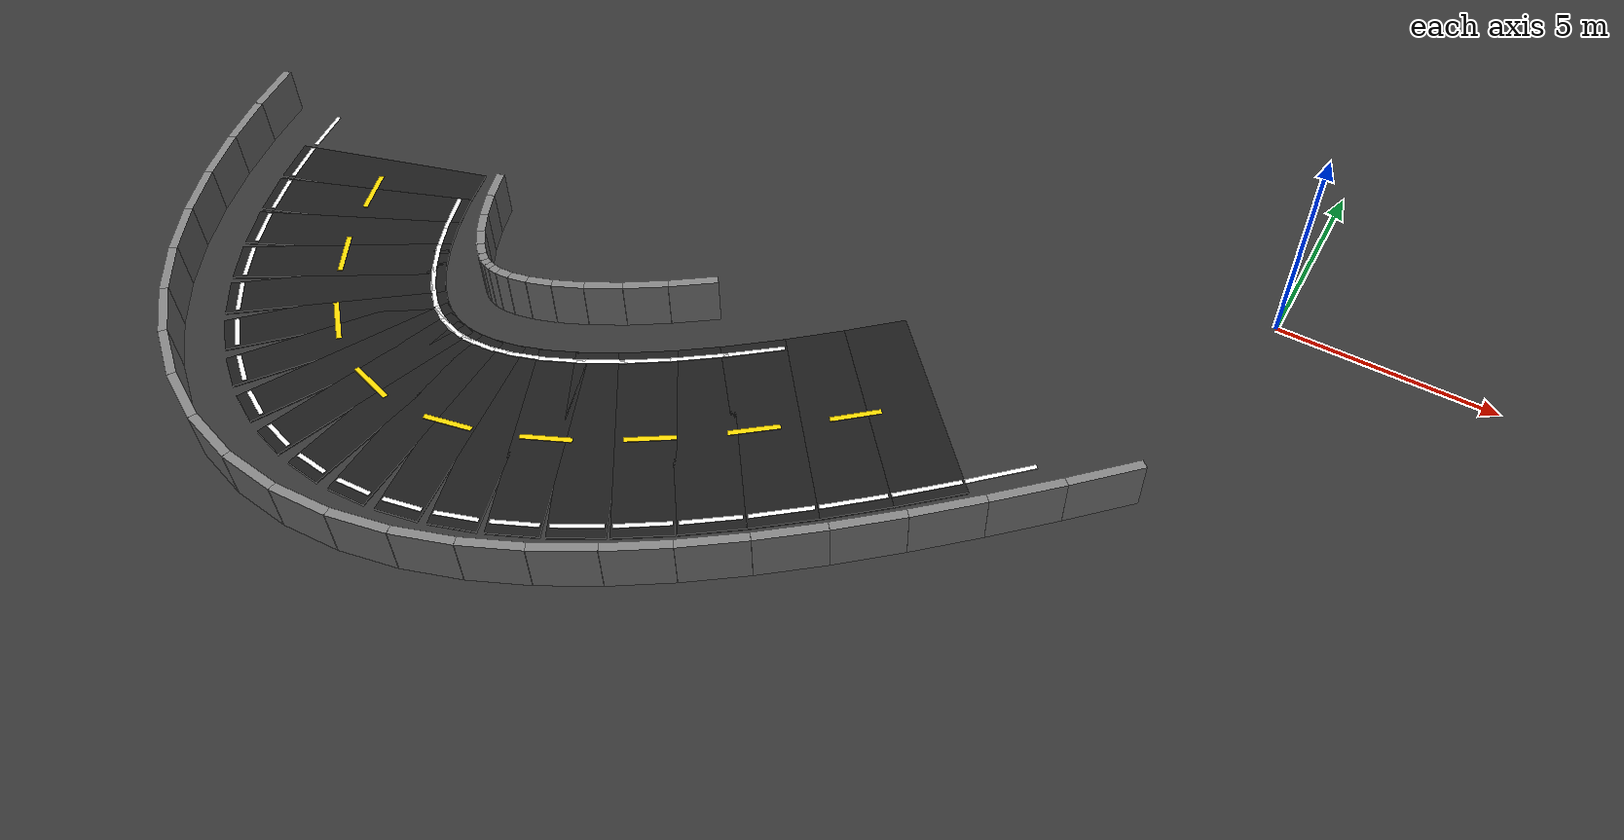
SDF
<sdf version="1.6">
 <world name="adas_figure8_circuit">
  <model name="ground">
   <static>true</static>
   <link name="link">
    <collision name="collision">
     <geometry><plane><normal>0 0 1</normal><size>80.0 80.0</size></plane></geometry>
    </collision>
    <visual name="visual">
     <geometry><plane><normal>0 0 1</normal><size>80.0 80.0</size></plane></geometry>
     <material><ambient>0.16 0.16 0.16 1</ambient><diffuse>0.20 0.20 0.20 1</diffuse></material>
    </visual>
   </link>
  </model>
  <model name="road_095">
   <static>true</static>
   <pose>-21.0868 -6.5267 0.025 0 0 -1.269703</pose>
   <link name="link">
    <collision name="collision"><geometry><box><size>1.2030 5.000 0.05</size></box></geometry></collision>
    <visual name="visual">
     <geometry><box><size>1.2030 5.000 0.05</size></box></geometry>
     <material><ambient>0.07 0.07 0.07 1</ambient><diffuse>0.10 0.10 0.10 1</diffuse></material>
    </visual>
   </link>
  </model>
  <model name="road_096">
   <static>true</static>
   <pose>-20.7310 -7.5415 0.025 0 0 -1.195586</pose>
   <link name="link">
    <collision name="collision"><geometry><box><size>1.1491 5.000 0.05</size></box></geometry></collision>
    <visual name="visual">
     <geometry><box><size>1.1491 5.000 0.05</size></box></geometry>
     <material><ambient>0.07 0.07 0.07 1</ambient><diffuse>0.10 0.10 0.10 1</diffuse></material>
    </visual>
   </link>
  </model>
  <model name="road_097">
   <static>true</static>
   <pose>-20.3184 -8.4737 0.025 0 0 -1.110140</pose>
   <link name="link">
    <collision name="collision"><geometry><box><size>1.0915 5.000 0.05</size></box></geometry></collision>
    <visual name="visual">
     <geometry><box><size>1.0915 5.000 0.05</size></box></geometry>
     <material><ambient>0.07 0.07 0.07 1</ambient><diffuse>0.10 0.10 0.10 1</diffuse></material>
    </visual>
   </link>
  </model>
  <model name="road_098">
   <static>true</static>
   <pose>-19.8501 -9.3130 0.025 0 0 -1.010547</pose>
   <link name="link">
    <collision name="collision"><geometry><box><size>1.0331 5.000 0.05</size></box></geometry></collision>
    <visual name="visual">
     <geometry><box><size>1.0331 5.000 0.05</size></box></geometry>
     <material><ambient>0.07 0.07 0.07 1</ambient><diffuse>0.10 0.10 0.10 1</diffuse></material>
    </visual>
   </link>
  </model>
  <model name="road_099">
   <static>true</static>
   <pose>-19.3274 -10.0503 0.025 0 0 -0.894005</pose>
   <link name="link">
    <collision name="collision"><geometry><box><size>0.9775 5.000 0.05</size></box></geometry></collision>
    <visual name="visual">
     <geometry><box><size>0.9775 5.000 0.05</size></box></geometry>
     <material><ambient>0.07 0.07 0.07 1</ambient><diffuse>0.10 0.10 0.10 1</diffuse></material>
    </visual>
   </link>
  </model>
  <model name="road_100">
   <static>true</static>
   <pose>-18.7517 -10.6774 0.025 0 0 -0.758473</pose>
   <link name="link">
    <collision name="collision"><geometry><box><size>0.9291 5.000 0.05</size></box></geometry></collision>
    <visual name="visual">
     <geometry><box><size>0.9291 5.000 0.05</size></box></geometry>
     <material><ambient>0.07 0.07 0.07 1</ambient><diffuse>0.10 0.10 0.10 1</diffuse></material>
    </visual>
   </link>
  </model>
  <model name="road_101">
   <static>true</static>
   <pose>-18.1246 -11.1876 0.025 0 0 -0.603974</pose>
   <link name="link">
    <collision name="collision"><geometry><box><size>0.8926 5.000 0.05</size></box></geometry></collision>
    <visual name="visual">
     <geometry><box><size>0.8926 5.000 0.05</size></box></geometry>
     <material><ambient>0.07 0.07 0.07 1</ambient><diffuse>0.10 0.10 0.10 1</diffuse></material>
    </visual>
   </link>
  </model>
  <model name="road_102">
   <static>true</static>
   <pose>-17.4478 -11.5752 0.025 0 0 -0.434146</pose>
   <link name="link">
    <collision name="collision"><geometry><box><size>0.8729 5.000 0.05</size></box></geometry></collision>
    <visual name="visual">
     <geometry><box><size>0.8729 5.000 0.05</size></box></geometry>
     <material><ambient>0.07 0.07 0.07 1</ambient><diffuse>0.10 0.10 0.10 1</diffuse></material>
    </visual>
   </link>
  </model>
  <model name="road_103">
   <static>true</static>
   <pose>-16.7232 -11.8360 0.025 0 0 -0.256877</pose>
   <link name="link">
    <collision name="collision"><geometry><box><size>0.8734 5.000 0.05</size></box></geometry></collision>
    <visual name="visual">
     <geometry><box><size>0.8734 5.000 0.05</size></box></geometry>
     <material><ambient>0.07 0.07 0.07 1</ambient><diffuse>0.10 0.10 0.10 1</diffuse></material>
    </visual>
   </link>
  </model>
  <model name="road_104">
   <static>true</static>
   <pose>-15.9528 -11.9671 0.025 0 0 -0.082725</pose>
   <link name="link">
    <collision name="collision"><geometry><box><size>0.8956 5.000 0.05</size></box></geometry></collision>
    <visual name="visual">
     <geometry><box><size>0.8956 5.000 0.05</size></box></geometry>
     <material><ambient>0.07 0.07 0.07 1</ambient><diffuse>0.10 0.10 0.10 1</diffuse></material>
    </visual>
   </link>
  </model>
  <model name="road_105">
   <static>true</static>
   <pose>-15.1386 -11.9671 0.025 0 0 0.078521</pose>
   <link name="link">
    <collision name="collision"><geometry><box><size>0.9381 5.000 0.05</size></box></geometry></collision>
    <visual name="visual">
     <geometry><box><size>0.9381 5.000 0.05</size></box></geometry>
     <material><ambient>0.07 0.07 0.07 1</ambient><diffuse>0.10 0.10 0.10 1</diffuse></material>
    </visual>
   </link>
  </model>
  <model name="road_106">
   <static>true</static>
   <pose>-14.2830 -11.8360 0.025 0 0 0.220696</pose>
   <link name="link">
    <collision name="collision"><geometry><box><size>0.9976 5.000 0.05</size></box></geometry></collision>
    <visual name="visual">
     <geometry><box><size>0.9976 5.000 0.05</size></box></geometry>
     <material><ambient>0.07 0.07 0.07 1</ambient><diffuse>0.10 0.10 0.10 1</diffuse></material>
    </visual>
   </link>
  </model>
  <model name="road_107">
   <static>true</static>
   <pose>-13.3882 -11.5752 0.025 0 0 0.341806</pose>
   <link name="link">
    <collision name="collision"><geometry><box><size>1.0699 5.000 0.05</size></box></geometry></collision>
    <visual name="visual">
     <geometry><box><size>1.0699 5.000 0.05</size></box></geometry>
     <material><ambient>0.07 0.07 0.07 1</ambient><diffuse>0.10 0.10 0.10 1</diffuse></material>
    </visual>
   </link>
  </model>
  <model name="road_108">
   <static>true</static>
   <pose>-12.4567 -11.1876 0.025 0 0 0.442808</pose>
   <link name="link">
    <collision name="collision"><geometry><box><size>1.1505 5.000 0.05</size></box></geometry></collision>
    <visual name="visual">
     <geometry><box><size>1.1505 5.000 0.05</size></box></geometry>
     <material><ambient>0.07 0.07 0.07 1</ambient><diffuse>0.10 0.10 0.10 1</diffuse></material>
    </visual>
   </link>
  </model>
  <model name="road_109">
   <static>true</static>
   <pose>-11.4910 -10.6774 0.025 0 0 0.526076</pose>
   <link name="link">
    <collision name="collision"><geometry><box><size>1.2356 5.000 0.05</size></box></geometry></collision>
    <visual name="visual">
     <geometry><box><size>1.2356 5.000 0.05</size></box></geometry>
     <material><ambient>0.07 0.07 0.07 1</ambient><diffuse>0.10 0.10 0.10 1</diffuse></material>
    </visual>
   </link>
  </model>
  <model name="road_110">
   <static>true</static>
   <pose>-10.4939 -10.0503 0.025 0 0 0.594333</pose>
   <link name="link">
    <collision name="collision"><geometry><box><size>1.3217 5.000 0.05</size></box></geometry></collision>
    <visual name="visual">
     <geometry><box><size>1.3217 5.000 0.05</size></box></geometry>
     <material><ambient>0.07 0.07 0.07 1</ambient><diffuse>0.10 0.10 0.10 1</diffuse></material>
    </visual>
   </link>
  </model>
  <model name="road_111">
   <static>true</static>
   <pose>-9.4680 -9.3130 0.025 0 0 0.650103</pose>
   <link name="link">
    <collision name="collision"><geometry><box><size>1.4060 5.000 0.05</size></box></geometry></collision>
    <visual name="visual">
     <geometry><box><size>1.4060 5.000 0.05</size></box></geometry>
     <material><ambient>0.07 0.07 0.07 1</ambient><diffuse>0.10 0.10 0.10 1</diffuse></material>
    </visual>
   </link>
  </model>
  <model name="road_112">
   <static>true</static>
   <pose>-8.4162 -8.4737 0.025 0 0 0.695520</pose>
   <link name="link">
    <collision name="collision"><geometry><box><size>1.4861 5.000 0.05</size></box></geometry></collision>
    <visual name="visual">
     <geometry><box><size>1.4861 5.000 0.05</size></box></geometry>
     <material><ambient>0.07 0.07 0.07 1</ambient><diffuse>0.10 0.10 0.10 1</diffuse></material>
    </visual>
   </link>
  </model>
  <model name="road_113">
   <static>true</static>
   <pose>-7.3412 -7.5415 0.025 0 0 0.732304</pose>
   <link name="link">
    <collision name="collision"><geometry><box><size>1.5600 5.000 0.05</size></box></geometry></collision>
    <visual name="visual">
     <geometry><box><size>1.5600 5.000 0.05</size></box></geometry>
     <material><ambient>0.07 0.07 0.07 1</ambient><diffuse>0.10 0.10 0.10 1</diffuse></material>
    </visual>
   </link>
  </model>
  <model name="road_114">
   <static>true</static>
   <pose>-6.2462 -6.5267 0.025 0 0 0.761799</pose>
   <link name="link">
    <collision name="collision"><geometry><box><size>1.6262 5.000 0.05</size></box></geometry></collision>
    <visual name="visual">
     <geometry><box><size>1.6262 5.000 0.05</size></box></geometry>
     <material><ambient>0.07 0.07 0.07 1</ambient><diffuse>0.10 0.10 0.10 1</diffuse></material>
    </visual>
   </link>
  </model>
  <model name="center_dash_050">
   <static>true</static>
   <pose>-20.8994 -7.1141 0.058 0 0 -1.195586</pose>
   <link name="link">
    <visual name="visual">
     <geometry><box><size>1.150 0.12 0.02</size></box></geometry>
     <material><ambient>1 0.82 0 1</ambient><diffuse>1 0.82 0 1</diffuse></material>
    </visual>
   </link>
  </model>
  <model name="center_dash_051">
   <static>true</static>
   <pose>-19.9653 -9.1292 0.058 0 0 -1.010547</pose>
   <link name="link">
    <visual name="visual">
     <geometry><box><size>1.150 0.12 0.02</size></box></geometry>
     <material><ambient>1 0.82 0 1</ambient><diffuse>1 0.82 0 1</diffuse></material>
    </visual>
   </link>
  </model>
  <model name="center_dash_052">
   <static>true</static>
   <pose>-18.5705 -10.8491 0.058 0 0 -0.758473</pose>
   <link name="link">
    <visual name="visual">
     <geometry><box><size>1.150 0.12 0.02</size></box></geometry>
     <material><ambient>1 0.82 0 1</ambient><diffuse>1 0.82 0 1</diffuse></material>
    </visual>
   </link>
  </model>
  <model name="center_dash_053">
   <static>true</static>
   <pose>-16.6187 -11.8635 0.058 0 0 -0.256877</pose>
   <link name="link">
    <visual name="visual">
     <geometry><box><size>1.150 0.12 0.02</size></box></geometry>
     <material><ambient>1 0.82 0 1</ambient><diffuse>1 0.82 0 1</diffuse></material>
    </visual>
   </link>
  </model>
  <model name="center_dash_054">
   <static>true</static>
   <pose>-14.4156 -11.8658 0.058 0 0 0.220696</pose>
   <link name="link">
    <visual name="visual">
     <geometry><box><size>1.150 0.12 0.02</size></box></geometry>
     <material><ambient>1 0.82 0 1</ambient><diffuse>1 0.82 0 1</diffuse></material>
    </visual>
   </link>
  </model>
  <model name="center_dash_055">
   <static>true</static>
   <pose>-12.3255 -11.1254 0.058 0 0 0.442808</pose>
   <link name="link">
    <visual name="visual">
     <geometry><box><size>1.150 0.12 0.02</size></box></geometry>
     <material><ambient>1 0.82 0 1</ambient><diffuse>1 0.82 0 1</diffuse></material>
    </visual>
   </link>
  </model>
  <model name="center_dash_056">
   <static>true</static>
   <pose>-10.4122 -9.9951 0.058 0 0 0.594333</pose>
   <link name="link">
    <visual name="visual">
     <geometry><box><size>1.150 0.12 0.02</size></box></geometry>
     <material><ambient>1 0.82 0 1</ambient><diffuse>1 0.82 0 1</diffuse></material>
    </visual>
   </link>
  </model>
  <model name="center_dash_057">
   <static>true</static>
   <pose>-8.6358 -8.6570 0.058 0 0 0.695520</pose>
   <link name="link">
    <visual name="visual">
     <geometry><box><size>1.150 0.12 0.02</size></box></geometry>
     <material><ambient>1 0.82 0 1</ambient><diffuse>1 0.82 0 1</diffuse></material>
    </visual>
   </link>
  </model>
  <model name="center_dash_058">
   <static>true</static>
   <pose>-6.9576 -7.1966 0.058 0 0 0.732304</pose>
   <link name="link">
    <visual name="visual">
     <geometry><box><size>1.150 0.12 0.02</size></box></geometry>
     <material><ambient>1 0.82 0 1</ambient><diffuse>1 0.82 0 1</diffuse></material>
    </visual>
   </link>
  </model>
  <model name="edge_left_096">
   <static>true</static>
   <pose>-18.6655 -6.7279 0.058 0 0 -1.195586</pose>
   <link name="link">
    <visual name="visual">
     <geometry><box><size>1.0491 0.10 0.02</size></box></geometry>
     <material><ambient>0.95 0.95 0.95 1</ambient><diffuse>0.95 0.95 0.95 1</diffuse></material>
    </visual>
   </link>
  </model>
  <model name="edge_left_097">
   <static>true</static>
   <pose>-18.3298 -7.4868 0.058 0 0 -1.110140</pose>
   <link name="link">
    <visual name="visual">
     <geometry><box><size>0.9915 0.10 0.02</size></box></geometry>
     <material><ambient>0.95 0.95 0.95 1</ambient><diffuse>0.95 0.95 0.95 1</diffuse></material>
    </visual>
   </link>
  </model>
  <model name="edge_left_098">
   <static>true</static>
   <pose>-17.9695 -8.1333 0.058 0 0 -1.010547</pose>
   <link name="link">
    <visual name="visual">
     <geometry><box><size>0.9331 0.10 0.02</size></box></geometry>
     <material><ambient>0.95 0.95 0.95 1</ambient><diffuse>0.95 0.95 0.95 1</diffuse></material>
    </visual>
   </link>
  </model>
  <model name="edge_left_099">
   <static>true</static>
   <pose>-17.5967 -8.6599 0.058 0 0 -0.894005</pose>
   <link name="link">
    <visual name="visual">
     <geometry><box><size>0.8775 0.10 0.02</size></box></geometry>
     <material><ambient>0.95 0.95 0.95 1</ambient><diffuse>0.95 0.95 0.95 1</diffuse></material>
    </visual>
   </link>
  </model>
  <model name="edge_left_100">
   <static>true</static>
   <pose>-17.2247 -9.0660 0.058 0 0 -0.758473</pose>
   <link name="link">
    <visual name="visual">
     <geometry><box><size>0.8291 0.10 0.02</size></box></geometry>
     <material><ambient>0.95 0.95 0.95 1</ambient><diffuse>0.95 0.95 0.95 1</diffuse></material>
    </visual>
   </link>
  </model>
  <model name="edge_left_101">
   <static>true</static>
   <pose>-16.8638 -9.3604 0.058 0 0 -0.603974</pose>
   <link name="link">
    <visual name="visual">
     <geometry><box><size>0.7926 0.10 0.02</size></box></geometry>
     <material><ambient>0.95 0.95 0.95 1</ambient><diffuse>0.95 0.95 0.95 1</diffuse></material>
    </visual>
   </link>
  </model>
  <model name="edge_left_102">
   <static>true</static>
   <pose>-16.5140 -9.5612 0.058 0 0 -0.434146</pose>
   <link name="link">
    <visual name="visual">
     <geometry><box><size>0.7729 0.10 0.02</size></box></geometry>
     <material><ambient>0.95 0.95 0.95 1</ambient><diffuse>0.95 0.95 0.95 1</diffuse></material>
    </visual>
   </link>
  </model>
  <model name="edge_left_103">
   <static>true</static>
   <pose>-16.1592 -9.6889 0.058 0 0 -0.256877</pose>
   <link name="link">
    <visual name="visual">
     <geometry><box><size>0.7734 0.10 0.02</size></box></geometry>
     <material><ambient>0.95 0.95 0.95 1</ambient><diffuse>0.95 0.95 0.95 1</diffuse></material>
    </visual>
   </link>
  </model>
  <model name="edge_left_104">
   <static>true</static>
   <pose>-15.7693 -9.7547 0.058 0 0 -0.082725</pose>
   <link name="link">
    <visual name="visual">
     <geometry><box><size>0.7956 0.10 0.02</size></box></geometry>
     <material><ambient>0.95 0.95 0.95 1</ambient><diffuse>0.95 0.95 0.95 1</diffuse></material>
    </visual>
   </link>
  </model>
  <model name="edge_left_105">
   <static>true</static>
   <pose>-15.3127 -9.7540 0.058 0 0 0.078521</pose>
   <link name="link">
    <visual name="visual">
     <geometry><box><size>0.8381 0.10 0.02</size></box></geometry>
     <material><ambient>0.95 0.95 0.95 1</ambient><diffuse>0.95 0.95 0.95 1</diffuse></material>
    </visual>
   </link>
  </model>
  <model name="edge_left_106">
   <static>true</static>
   <pose>-14.7689 -9.6699 0.058 0 0 0.220696</pose>
   <link name="link">
    <visual name="visual">
     <geometry><box><size>0.8976 0.10 0.02</size></box></geometry>
     <material><ambient>0.95 0.95 0.95 1</ambient><diffuse>0.95 0.95 0.95 1</diffuse></material>
    </visual>
   </link>
  </model>
  <model name="edge_left_107">
   <static>true</static>
   <pose>-14.1323 -9.4836 0.058 0 0 0.341806</pose>
   <link name="link">
    <visual name="visual">
     <geometry><box><size>0.9699 0.10 0.02</size></box></geometry>
     <material><ambient>0.95 0.95 0.95 1</ambient><diffuse>0.95 0.95 0.95 1</diffuse></material>
    </visual>
   </link>
  </model>
  <model name="edge_left_108">
   <static>true</static>
   <pose>-13.4079 -9.1817 0.058 0 0 0.442808</pose>
   <link name="link">
    <visual name="visual">
     <geometry><box><size>1.0505 0.10 0.02</size></box></geometry>
     <material><ambient>0.95 0.95 0.95 1</ambient><diffuse>0.95 0.95 0.95 1</diffuse></material>
    </visual>
   </link>
  </model>
  <model name="edge_left_109">
   <static>true</static>
   <pose>-12.6058 -8.7576 0.058 0 0 0.526076</pose>
   <link name="link">
    <visual name="visual">
     <geometry><box><size>1.1356 0.10 0.02</size></box></geometry>
     <material><ambient>0.95 0.95 0.95 1</ambient><diffuse>0.95 0.95 0.95 1</diffuse></material>
    </visual>
   </link>
  </model>
  <model name="edge_left_110">
   <static>true</static>
   <pose>-11.7370 -8.2109 0.058 0 0 0.594333</pose>
   <link name="link">
    <visual name="visual">
     <geometry><box><size>1.2217 0.10 0.02</size></box></geometry>
     <material><ambient>0.95 0.95 0.95 1</ambient><diffuse>0.95 0.95 0.95 1</diffuse></material>
    </visual>
   </link>
  </model>
  <model name="edge_left_111">
   <static>true</static>
   <pose>-10.8117 -7.5458 0.058 0 0 0.650103</pose>
   <link name="link">
    <visual name="visual">
     <geometry><box><size>1.3060 0.10 0.02</size></box></geometry>
     <material><ambient>0.95 0.95 0.95 1</ambient><diffuse>0.95 0.95 0.95 1</diffuse></material>
    </visual>
   </link>
  </model>
  <model name="edge_left_112">
   <static>true</static>
   <pose>-9.8387 -6.7693 0.058 0 0 0.695520</pose>
   <link name="link">
    <visual name="visual">
     <geometry><box><size>1.3861 0.10 0.02</size></box></geometry>
     <material><ambient>0.95 0.95 0.95 1</ambient><diffuse>0.95 0.95 0.95 1</diffuse></material>
    </visual>
   </link>
  </model>
  <model name="edge_right_094">
   <static>true</static>
   <pose>-23.5434 -5.9590 0.058 0 0 -1.335014</pose>
   <link name="link">
    <visual name="visual">
     <geometry><box><size>1.1510 0.10 0.02</size></box></geometry>
     <material><ambient>0.95 0.95 0.95 1</ambient><diffuse>0.95 0.95 0.95 1</diffuse></material>
    </visual>
   </link>
  </model>
  <model name="edge_right_095">
   <static>true</static>
   <pose>-23.2069 -7.1851 0.058 0 0 -1.269703</pose>
   <link name="link">
    <visual name="visual">
     <geometry><box><size>1.1030 0.10 0.02</size></box></geometry>
     <material><ambient>0.95 0.95 0.95 1</ambient><diffuse>0.95 0.95 0.95 1</diffuse></material>
    </visual>
   </link>
  </model>
  <model name="edge_right_096">
   <static>true</static>
   <pose>-22.7966 -8.3551 0.058 0 0 -1.195586</pose>
   <link name="link">
    <visual name="visual">
     <geometry><box><size>1.0491 0.10 0.02</size></box></geometry>
     <material><ambient>0.95 0.95 0.95 1</ambient><diffuse>0.95 0.95 0.95 1</diffuse></material>
    </visual>
   </link>
  </model>
  <model name="edge_right_097">
   <static>true</static>
   <pose>-22.3070 -9.4605 0.058 0 0 -1.110140</pose>
   <link name="link">
    <visual name="visual">
     <geometry><box><size>0.9915 0.10 0.02</size></box></geometry>
     <material><ambient>0.95 0.95 0.95 1</ambient><diffuse>0.95 0.95 0.95 1</diffuse></material>
    </visual>
   </link>
  </model>
  <model name="edge_right_098">
   <static>true</static>
   <pose>-21.7307 -10.4927 0.058 0 0 -1.010547</pose>
   <link name="link">
    <visual name="visual">
     <geometry><box><size>0.9331 0.10 0.02</size></box></geometry>
     <material><ambient>0.95 0.95 0.95 1</ambient><diffuse>0.95 0.95 0.95 1</diffuse></material>
    </visual>
   </link>
  </model>
  <model name="edge_right_099">
   <static>true</static>
   <pose>-21.0580 -11.4406 0.058 0 0 -0.894005</pose>
   <link name="link">
    <visual name="visual">
     <geometry><box><size>0.8775 0.10 0.02</size></box></geometry>
     <material><ambient>0.95 0.95 0.95 1</ambient><diffuse>0.95 0.95 0.95 1</diffuse></material>
    </visual>
   </link>
  </model>
  <model name="edge_right_100">
   <static>true</static>
   <pose>-20.2786 -12.2889 0.058 0 0 -0.758473</pose>
   <link name="link">
    <visual name="visual">
     <geometry><box><size>0.8291 0.10 0.02</size></box></geometry>
     <material><ambient>0.95 0.95 0.95 1</ambient><diffuse>0.95 0.95 0.95 1</diffuse></material>
    </visual>
   </link>
  </model>
  <model name="edge_right_101">
   <static>true</static>
   <pose>-19.3853 -13.0149 0.058 0 0 -0.603974</pose>
   <link name="link">
    <visual name="visual">
     <geometry><box><size>0.7926 0.10 0.02</size></box></geometry>
     <material><ambient>0.95 0.95 0.95 1</ambient><diffuse>0.95 0.95 0.95 1</diffuse></material>
    </visual>
   </link>
  </model>
  <model name="edge_right_102">
   <static>true</static>
   <pose>-18.3816 -13.5893 0.058 0 0 -0.434146</pose>
   <link name="link">
    <visual name="visual">
     <geometry><box><size>0.7729 0.10 0.02</size></box></geometry>
     <material><ambient>0.95 0.95 0.95 1</ambient><diffuse>0.95 0.95 0.95 1</diffuse></material>
    </visual>
   </link>
  </model>
  <model name="edge_right_103">
   <static>true</static>
   <pose>-17.2872 -13.9832 0.058 0 0 -0.256877</pose>
   <link name="link">
    <visual name="visual">
     <geometry><box><size>0.7734 0.10 0.02</size></box></geometry>
     <material><ambient>0.95 0.95 0.95 1</ambient><diffuse>0.95 0.95 0.95 1</diffuse></material>
    </visual>
   </link>
  </model>
  <model name="edge_right_104">
   <static>true</static>
   <pose>-16.1362 -14.1795 0.058 0 0 -0.082725</pose>
   <link name="link">
    <visual name="visual">
     <geometry><box><size>0.7956 0.10 0.02</size></box></geometry>
     <material><ambient>0.95 0.95 0.95 1</ambient><diffuse>0.95 0.95 0.95 1</diffuse></material>
    </visual>
   </link>
  </model>
  <model name="edge_right_105">
   <static>true</static>
   <pose>-14.9645 -14.1803 0.058 0 0 0.078521</pose>
   <link name="link">
    <visual name="visual">
     <geometry><box><size>0.8381 0.10 0.02</size></box></geometry>
     <material><ambient>0.95 0.95 0.95 1</ambient><diffuse>0.95 0.95 0.95 1</diffuse></material>
    </visual>
   </link>
  </model>
  <model name="edge_right_106">
   <static>true</static>
   <pose>-13.7970 -14.0022 0.058 0 0 0.220696</pose>
   <link name="link">
    <visual name="visual">
     <geometry><box><size>0.8976 0.10 0.02</size></box></geometry>
     <material><ambient>0.95 0.95 0.95 1</ambient><diffuse>0.95 0.95 0.95 1</diffuse></material>
    </visual>
   </link>
  </model>
  <model name="edge_right_107">
   <static>true</static>
   <pose>-12.6440 -13.6668 0.058 0 0 0.341806</pose>
   <link name="link">
    <visual name="visual">
     <geometry><box><size>0.9699 0.10 0.02</size></box></geometry>
     <material><ambient>0.95 0.95 0.95 1</ambient><diffuse>0.95 0.95 0.95 1</diffuse></material>
    </visual>
   </link>
  </model>
  <model name="edge_right_108">
   <static>true</static>
   <pose>-11.5054 -13.1935 0.058 0 0 0.442808</pose>
   <link name="link">
    <visual name="visual">
     <geometry><box><size>1.0505 0.10 0.02</size></box></geometry>
     <material><ambient>0.95 0.95 0.95 1</ambient><diffuse>0.95 0.95 0.95 1</diffuse></material>
    </visual>
   </link>
  </model>
  <model name="edge_right_109">
   <static>true</static>
   <pose>-10.3763 -12.5972 0.058 0 0 0.526076</pose>
   <link name="link">
    <visual name="visual">
     <geometry><box><size>1.1356 0.10 0.02</size></box></geometry>
     <material><ambient>0.95 0.95 0.95 1</ambient><diffuse>0.95 0.95 0.95 1</diffuse></material>
    </visual>
   </link>
  </model>
  <model name="edge_right_110">
   <static>true</static>
   <pose>-9.2508 -11.8896 0.058 0 0 0.594333</pose>
   <link name="link">
    <visual name="visual">
     <geometry><box><size>1.2217 0.10 0.02</size></box></geometry>
     <material><ambient>0.95 0.95 0.95 1</ambient><diffuse>0.95 0.95 0.95 1</diffuse></material>
    </visual>
   </link>
  </model>
  <model name="edge_right_111">
   <static>true</static>
   <pose>-8.1243 -11.0801 0.058 0 0 0.650103</pose>
   <link name="link">
    <visual name="visual">
     <geometry><box><size>1.3060 0.10 0.02</size></box></geometry>
     <material><ambient>0.95 0.95 0.95 1</ambient><diffuse>0.95 0.95 0.95 1</diffuse></material>
    </visual>
   </link>
  </model>
  <model name="edge_right_112">
   <static>true</static>
   <pose>-6.9936 -10.1780 0.058 0 0 0.695520</pose>
   <link name="link">
    <visual name="visual">
     <geometry><box><size>1.3861 0.10 0.02</size></box></geometry>
     <material><ambient>0.95 0.95 0.95 1</ambient><diffuse>0.95 0.95 0.95 1</diffuse></material>
    </visual>
   </link>
  </model>
  <model name="edge_right_113">
   <static>true</static>
   <pose>-5.8570 -9.1924 0.058 0 0 0.732304</pose>
   <link name="link">
    <visual name="visual">
     <geometry><box><size>1.4600 0.10 0.02</size></box></geometry>
     <material><ambient>0.95 0.95 0.95 1</ambient><diffuse>0.95 0.95 0.95 1</diffuse></material>
    </visual>
   </link>
  </model>
  <model name="edge_right_114">
   <static>true</static>
   <pose>-4.7139 -8.1331 0.058 0 0 0.761799</pose>
   <link name="link">
    <visual name="visual">
     <geometry><box><size>1.5262 0.10 0.02</size></box></geometry>
     <material><ambient>0.95 0.95 0.95 1</ambient><diffuse>0.95 0.95 0.95 1</diffuse></material>
    </visual>
   </link>
  </model>
  <model name="edge_right_115">
   <static>true</static>
   <pose>-3.5648 -7.0108 0.058 0 0 0.785040</pose>
   <link name="link">
    <visual name="visual">
     <geometry><box><size>1.5833 0.10 0.02</size></box></geometry>
     <material><ambient>0.95 0.95 0.95 1</ambient><diffuse>0.95 0.95 0.95 1</diffuse></material>
    </visual>
   </link>
  </model>
  <model name="slam_barrier_right_094">
   <static>true</static>
   <pose>-24.7857 -6.2602 0.6000
        0 0 -1.334896</pose>
   <link name="link">
    <collision name="collision">
     <geometry><box><size>1.3670
                0.2000
                1.2000</size></box></geometry>
    </collision>
    <visual name="visual">
     <geometry><box><size>1.3670
                0.2000
                1.2000</size></box></geometry>
     <material><ambient>0.4 0.4 0.4 1</ambient><diffuse>0.5 0.5 0.5 1</diffuse></material>
    </visual>
   </link>
  </model>
  <model name="slam_barrier_right_095">
   <static>true</static>
   <pose>-24.4263 -7.5674 0.6000
        0 0 -1.269522</pose>
   <link name="link">
    <collision name="collision">
     <geometry><box><size>1.3459
                0.2000
                1.2000</size></box></geometry>
    </collision>
    <visual name="visual">
     <geometry><box><size>1.3459
                0.2000
                1.2000</size></box></geometry>
     <material><ambient>0.4 0.4 0.4 1</ambient><diffuse>0.5 0.5 0.5 1</diffuse></material>
    </visual>
   </link>
  </model>
  <model name="slam_barrier_left_096">
   <static>true</static>
   <pose>-17.4787 -6.2556 0.6000
        0 0 -1.196053</pose>
   <link name="link">
    <collision name="collision">
     <geometry><box><size>0.7712
                0.2000
                1.2000</size></box></geometry>
    </collision>
    <visual name="visual">
     <geometry><box><size>0.7712
                0.2000
                1.2000</size></box></geometry>
     <material><ambient>0.4 0.4 0.4 1</ambient><diffuse>0.5 0.5 0.5 1</diffuse></material>
    </visual>
   </link>
  </model>
  <model name="slam_barrier_right_096">
   <static>true</static>
   <pose>-23.9833 -8.8273 0.6000
        0 0 -1.195314</pose>
   <link name="link">
    <collision name="collision">
     <geometry><box><size>1.3270
                0.2000
                1.2000</size></box></geometry>
    </collision>
    <visual name="visual">
     <geometry><box><size>1.3270
                0.2000
                1.2000</size></box></geometry>
     <material><ambient>0.4 0.4 0.4 1</ambient><diffuse>0.5 0.5 0.5 1</diffuse></material>
    </visual>
   </link>
  </model>
  <model name="slam_barrier_left_097">
   <static>true</static>
   <pose>-17.1891 -6.9143 0.6000
        0 0 -1.110926</pose>
   <link name="link">
    <collision name="collision">
     <geometry><box><size>0.6692
                0.2000
                1.2000</size></box></geometry>
    </collision>
    <visual name="visual">
     <geometry><box><size>0.6692
                0.2000
                1.2000</size></box></geometry>
     <material><ambient>0.4 0.4 0.4 1</ambient><diffuse>0.5 0.5 0.5 1</diffuse></material>
    </visual>
   </link>
  </model>
  <model name="slam_barrier_right_097">
   <static>true</static>
   <pose>-23.4477 -10.0330 0.6000
        0 0 -1.109740</pose>
   <link name="link">
    <collision name="collision">
     <geometry><box><size>1.3139
                0.2000
                1.2000</size></box></geometry>
    </collision>
    <visual name="visual">
     <geometry><box><size>1.3139
                0.2000
                1.2000</size></box></geometry>
     <material><ambient>0.4 0.4 0.4 1</ambient><diffuse>0.5 0.5 0.5 1</diffuse></material>
    </visual>
   </link>
  </model>
  <model name="slam_barrier_left_098">
   <static>true</static>
   <pose>-16.8931 -7.4499 0.6000
        0 0 -1.011882</pose>
   <link name="link">
    <collision name="collision">
     <geometry><box><size>0.5563
                0.2000
                1.2000</size></box></geometry>
    </collision>
    <visual name="visual">
     <geometry><box><size>0.5563
                0.2000
                1.2000</size></box></geometry>
     <material><ambient>0.4 0.4 0.4 1</ambient><diffuse>0.5 0.5 0.5 1</diffuse></material>
    </visual>
   </link>
  </model>
  <model name="slam_barrier_right_098">
   <static>true</static>
   <pose>-22.8070 -11.1760 0.6000
        0 0 -1.009981</pose>
   <link name="link">
    <collision name="collision">
     <geometry><box><size>1.3100
                0.2000
                1.2000</size></box></geometry>
    </collision>
    <visual name="visual">
     <geometry><box><size>1.3100
                0.2000
                1.2000</size></box></geometry>
     <material><ambient>0.4 0.4 0.4 1</ambient><diffuse>0.5 0.5 0.5 1</diffuse></material>
    </visual>
   </link>
  </model>
  <model name="slam_barrier_left_099">
   <static>true</static>
   <pose>-16.6091 -7.8565 0.6000
        0 0 -0.896244</pose>
   <link name="link">
    <collision name="collision">
     <geometry><box><size>0.4373
                0.2000
                1.2000</size></box></geometry>
    </collision>
    <visual name="visual">
     <geometry><box><size>0.4373
                0.2000
                1.2000</size></box></geometry>
     <material><ambient>0.4 0.4 0.4 1</ambient><diffuse>0.5 0.5 0.5 1</diffuse></material>
    </visual>
   </link>
  </model>
  <model name="slam_barrier_right_099">
   <static>true</static>
   <pose>-22.0456 -12.2440 0.6000
        0 0 -0.893262</pose>
   <link name="link">
    <collision name="collision">
     <geometry><box><size>1.3178
                0.2000
                1.2000</size></box></geometry>
    </collision>
    <visual name="visual">
     <geometry><box><size>1.3178
                0.2000
                1.2000</size></box></geometry>
     <material><ambient>0.4 0.4 0.4 1</ambient><diffuse>0.5 0.5 0.5 1</diffuse></material>
    </visual>
   </link>
  </model>
  <model name="slam_barrier_left_100">
   <static>true</static>
   <pose>-16.3563 -8.1382 0.6000
        0 0 -0.761998</pose>
   <link name="link">
    <collision name="collision">
     <geometry><box><size>0.3213
                0.2000
                1.2000</size></box></geometry>
    </collision>
    <visual name="visual">
     <geometry><box><size>0.3213
                0.2000
                1.2000</size></box></geometry>
     <material><ambient>0.4 0.4 0.4 1</ambient><diffuse>0.5 0.5 0.5 1</diffuse></material>
    </visual>
   </link>
  </model>
  <model name="slam_barrier_right_100">
   <static>true</static>
   <pose>-21.1470 -13.2167 0.6000
        0 0 -0.757625</pose>
   <link name="link">
    <collision name="collision">
     <geometry><box><size>1.3369
                0.2000
                1.2000</size></box></geometry>
    </collision>
    <visual name="visual">
     <geometry><box><size>1.3369
                0.2000
                1.2000</size></box></geometry>
     <material><ambient>0.4 0.4 0.4 1</ambient><diffuse>0.5 0.5 0.5 1</diffuse></material>
    </visual>
   </link>
  </model>
  <model name="slam_barrier_left_101">
   <static>true</static>
   <pose>-16.1486 -8.3128 0.6000
        0 0 -0.608555</pose>
   <link name="link">
    <collision name="collision">
     <geometry><box><size>0.2230
                0.2000
                1.2000</size></box></geometry>
    </collision>
    <visual name="visual">
     <geometry><box><size>0.2230
                0.2000
                1.2000</size></box></geometry>
     <material><ambient>0.4 0.4 0.4 1</ambient><diffuse>0.5 0.5 0.5 1</diffuse></material>
    </visual>
   </link>
  </model>
  <model name="slam_barrier_right_101">
   <static>true</static>
   <pose>-20.1005 -14.0624 0.6000
        0 0 -0.603224</pose>
   <link name="link">
    <collision name="collision">
     <geometry><box><size>1.3622
                0.2000
                1.2000</size></box></geometry>
    </collision>
    <visual name="visual">
     <geometry><box><size>1.3622
                0.2000
                1.2000</size></box></geometry>
     <material><ambient>0.4 0.4 0.4 1</ambient><diffuse>0.5 0.5 0.5 1</diffuse></material>
    </visual>
   </link>
  </model>
  <model name="slam_barrier_left_102">
   <static>true</static>
   <pose>-15.9838 -8.4108 0.6000
        0 0 -0.437259</pose>
   <link name="link">
    <collision name="collision">
     <geometry><box><size>0.1618
                0.2000
                1.2000</size></box></geometry>
    </collision>
    <visual name="visual">
     <geometry><box><size>0.1618
                0.2000
                1.2000</size></box></geometry>
     <material><ambient>0.4 0.4 0.4 1</ambient><diffuse>0.5 0.5 0.5 1</diffuse></material>
    </visual>
   </link>
  </model>
  <model name="slam_barrier_right_102">
   <static>true</static>
   <pose>-18.9118 -14.7396 0.6000
        0 0 -0.433782</pose>
   <link name="link">
    <collision name="collision">
     <geometry><box><size>1.3839
                0.2000
                1.2000</size></box></geometry>
    </collision>
    <visual name="visual">
     <geometry><box><size>1.3839
                0.2000
                1.2000</size></box></geometry>
     <material><ambient>0.4 0.4 0.4 1</ambient><diffuse>0.5 0.5 0.5 1</diffuse></material>
    </visual>
   </link>
  </model>
  <model name="slam_barrier_left_103">
   <static>true</static>
   <pose>-15.8359 -8.4645 0.6000
        0 0 -0.254954</pose>
   <link name="link">
    <collision name="collision">
     <geometry><box><size>0.1543
                0.2000
                1.2000</size></box></geometry>
    </collision>
    <visual name="visual">
     <geometry><box><size>0.1543
                0.2000
                1.2000</size></box></geometry>
     <material><ambient>0.4 0.4 0.4 1</ambient><diffuse>0.5 0.5 0.5 1</diffuse></material>
    </visual>
   </link>
  </model>
  <model name="slam_barrier_right_103">
   <static>true</static>
   <pose>-17.6105 -15.2075 0.6000
        0 0 -0.257090</pose>
   <link name="link">
    <collision name="collision">
     <geometry><box><size>1.3925
                0.2000
                1.2000</size></box></geometry>
    </collision>
    <visual name="visual">
     <geometry><box><size>1.3925
                0.2000
                1.2000</size></box></geometry>
     <material><ambient>0.4 0.4 0.4 1</ambient><diffuse>0.5 0.5 0.5 1</diffuse></material>
    </visual>
   </link>
  </model>
  <model name="slam_barrier_left_104">
   <static>true</static>
   <pose>-15.6588 -8.4920 0.6000
        0 0 -0.077921</pose>
   <link name="link">
    <collision name="collision">
     <geometry><box><size>0.2055
                0.2000
                1.2000</size></box></geometry>
    </collision>
    <visual name="visual">
     <geometry><box><size>0.2055
                0.2000
                1.2000</size></box></geometry>
     <material><ambient>0.4 0.4 0.4 1</ambient><diffuse>0.5 0.5 0.5 1</diffuse></material>
    </visual>
   </link>
  </model>
  <model name="slam_barrier_right_104">
   <static>true</static>
   <pose>-16.2468 -15.4423 0.6000
        0 0 -0.083437</pose>
   <link name="link">
    <collision name="collision">
     <geometry><box><size>1.3856
                0.2000
                1.2000</size></box></geometry>
    </collision>
    <visual name="visual">
     <geometry><box><size>1.3856
                0.2000
                1.2000</size></box></geometry>
     <material><ambient>0.4 0.4 0.4 1</ambient><diffuse>0.5 0.5 0.5 1</diffuse></material>
    </visual>
   </link>
  </model>
  <model name="slam_barrier_left_105">
   <static>true</static>
   <pose>-15.4040 -8.4874 0.6000
        0 0 0.082687</pose>
   <link name="link">
    <collision name="collision">
     <geometry><box><size>0.3057
                0.2000
                1.2000</size></box></geometry>
    </collision>
    <visual name="visual">
     <geometry><box><size>0.3057
                0.2000
                1.2000</size></box></geometry>
     <material><ambient>0.4 0.4 0.4 1</ambient><diffuse>0.5 0.5 0.5 1</diffuse></material>
    </visual>
   </link>
  </model>
  <model name="slam_barrier_right_105">
   <static>true</static>
   <pose>-14.8732 -15.4469 0.6000
        0 0 0.077591</pose>
   <link name="link">
    <collision name="collision">
     <geometry><box><size>1.3704
                0.2000
                1.2000</size></box></geometry>
    </collision>
    <visual name="visual">
     <geometry><box><size>1.3704
                0.2000
                1.2000</size></box></geometry>
     <material><ambient>0.4 0.4 0.4 1</ambient><diffuse>0.5 0.5 0.5 1</diffuse></material>
    </visual>
   </link>
  </model>
  <model name="slam_barrier_left_106">
   <static>true</static>
   <pose>-15.0387 -8.4263 0.6000
        0 0 0.223421</pose>
   <link name="link">
    <collision name="collision">
     <geometry><box><size>0.4369
                0.2000
                1.2000</size></box></geometry>
    </collision>
    <visual name="visual">
     <geometry><box><size>0.4369
                0.2000
                1.2000</size></box></geometry>
     <material><ambient>0.4 0.4 0.4 1</ambient><diffuse>0.5 0.5 0.5 1</diffuse></material>
    </visual>
   </link>
  </model>
  <model name="slam_barrier_right_106">
   <static>true</static>
   <pose>-13.5273 -15.2457 0.6000
        0 0 0.219819</pose>
   <link name="link">
    <collision name="collision">
     <geometry><box><size>1.3582
                0.2000
                1.2000</size></box></geometry>
    </collision>
    <visual name="visual">
     <geometry><box><size>1.3582
                0.2000
                1.2000</size></box></geometry>
     <material><ambient>0.4 0.4 0.4 1</ambient><diffuse>0.5 0.5 0.5 1</diffuse></material>
    </visual>
   </link>
  </model>
  <model name="slam_barrier_left_107">
   <static>true</static>
   <pose>-14.5516 -8.2799 0.6000
        0 0 0.343416</pose>
   <link name="link">
    <collision name="collision">
     <geometry><box><size>0.5821
                0.2000
                1.2000</size></box></geometry>
    </collision>
    <visual name="visual">
     <geometry><box><size>0.5821
                0.2000
                1.2000</size></box></geometry>
     <material><ambient>0.4 0.4 0.4 1</ambient><diffuse>0.5 0.5 0.5 1</diffuse></material>
    </visual>
   </link>
  </model>
  <model name="slam_barrier_right_107">
   <static>true</static>
   <pose>-12.2248 -14.8705 0.6000
        0 0 0.341115</pose>
   <link name="link">
    <collision name="collision">
     <geometry><box><size>1.3576
                0.2000
                1.2000</size></box></geometry>
    </collision>
    <visual name="visual">
     <geometry><box><size>1.3576
                0.2000
                1.2000</size></box></geometry>
     <material><ambient>0.4 0.4 0.4 1</ambient><diffuse>0.5 0.5 0.5 1</diffuse></material>
    </visual>
   </link>
  </model>
  <model name="slam_barrier_left_108">
   <static>true</static>
   <pose>-13.9482 -8.0254 0.6000
        0 0 0.443727</pose>
   <link name="link">
    <collision name="collision">
     <geometry><box><size>0.7293
                0.2000
                1.2000</size></box></geometry>
    </collision>
    <visual name="visual">
     <geometry><box><size>0.7293
                0.2000
                1.2000</size></box></geometry>
     <material><ambient>0.4 0.4 0.4 1</ambient><diffuse>0.5 0.5 0.5 1</diffuse></material>
    </visual>
   </link>
  </model>
  <model name="slam_barrier_right_108">
   <static>true</static>
   <pose>-10.9652 -14.3498 0.6000
        0 0 0.442319</pose>
   <link name="link">
    <collision name="collision">
     <geometry><box><size>1.3718
                0.2000
                1.2000</size></box></geometry>
    </collision>
    <visual name="visual">
     <geometry><box><size>1.3718
                0.2000
                1.2000</size></box></geometry>
     <material><ambient>0.4 0.4 0.4 1</ambient><diffuse>0.5 0.5 0.5 1</diffuse></material>
    </visual>
   </link>
  </model>
  <model name="slam_barrier_left_109">
   <static>true</static>
   <pose>-13.2421 -7.6498 0.6000
        0 0 0.526599</pose>
   <link name="link">
    <collision name="collision">
     <geometry><box><size>0.8716
                0.2000
                1.2000</size></box></geometry>
    </collision>
    <visual name="visual">
     <geometry><box><size>0.8716
                0.2000
                1.2000</size></box></geometry>
     <material><ambient>0.4 0.4 0.4 1</ambient><diffuse>0.5 0.5 0.5 1</diffuse></material>
    </visual>
   </link>
  </model>
  <model name="slam_barrier_right_109">
   <static>true</static>
   <pose>-9.7400 -13.7050 0.6000
        0 0 0.525751</pose>
   <link name="link">
    <collision name="collision">
     <geometry><box><size>1.3996
                0.2000
                1.2000</size></box></geometry>
    </collision>
    <visual name="visual">
     <geometry><box><size>1.3996
                0.2000
                1.2000</size></box></geometry>
     <material><ambient>0.4 0.4 0.4 1</ambient><diffuse>0.5 0.5 0.5 1</diffuse></material>
    </visual>
   </link>
  </model>
  <model name="slam_barrier_left_110">
   <static>true</static>
   <pose>-12.4488 -7.1491 0.6000
        0 0 0.594634</pose>
   <link name="link">
    <collision name="collision">
     <geometry><box><size>1.0057
                0.2000
                1.2000</size></box></geometry>
    </collision>
    <visual name="visual">
     <geometry><box><size>1.0057
                0.2000
                1.2000</size></box></geometry>
     <material><ambient>0.4 0.4 0.4 1</ambient><diffuse>0.5 0.5 0.5 1</diffuse></material>
    </visual>
   </link>
  </model>
  <model name="slam_barrier_right_110">
   <static>true</static>
   <pose>-8.5390 -12.9514 0.6000
        0 0 0.594123</pose>
   <link name="link">
    <collision name="collision">
     <geometry><box><size>1.4377
                0.2000
                1.2000</size></box></geometry>
    </collision>
    <visual name="visual">
     <geometry><box><size>1.4377
                0.2000
                1.2000</size></box></geometry>
     <material><ambient>0.4 0.4 0.4 1</ambient><diffuse>0.5 0.5 0.5 1</diffuse></material>
    </visual>
   </link>
  </model>
  <model name="slam_barrier_left_111">
   <static>true</static>
   <pose>-11.5826 -6.5254 0.6000
        0 0 0.650279</pose>
   <link name="link">
    <collision name="collision">
     <geometry><box><size>1.1297
                0.2000
                1.2000</size></box></geometry>
    </collision>
    <visual name="visual">
     <geometry><box><size>1.1297
                0.2000
                1.2000</size></box></geometry>
     <material><ambient>0.4 0.4 0.4 1</ambient><diffuse>0.5 0.5 0.5 1</diffuse></material>
    </visual>
   </link>
  </model>
  <model name="slam_barrier_right_111">
   <static>true</static>
   <pose>-7.3534 -12.1005 0.6000
        0 0 0.649969</pose>
   <link name="link">
    <collision name="collision">
     <geometry><box><size>1.4822
                0.2000
                1.2000</size></box></geometry>
    </collision>
    <visual name="visual">
     <geometry><box><size>1.4822
                0.2000
                1.2000</size></box></geometry>
     <material><ambient>0.4 0.4 0.4 1</ambient><diffuse>0.5 0.5 0.5 1</diffuse></material>
    </visual>
   </link>
  </model>
  <model name="slam_barrier_right_112">
   <static>true</static>
   <pose>-6.1763 -11.1621 0.6000
        0 0 0.695435</pose>
   <link name="link">
    <collision name="collision">
     <geometry><box><size>1.5293
                0.2000
                1.2000</size></box></geometry>
    </collision>
    <visual name="visual">
     <geometry><box><size>1.5293
                0.2000
                1.2000</size></box></geometry>
     <material><ambient>0.4 0.4 0.4 1</ambient><diffuse>0.5 0.5 0.5 1</diffuse></material>
    </visual>
   </link>
  </model>
  <model name="slam_barrier_right_113">
   <static>true</static>
   <pose>-5.0034 -10.1456 0.6000
        0 0 0.732250</pose>
   <link name="link">
    <collision name="collision">
     <geometry><box><size>1.5755
                0.2000
                1.2000</size></box></geometry>
    </collision>
    <visual name="visual">
     <geometry><box><size>1.5755
                0.2000
                1.2000</size></box></geometry>
     <material><ambient>0.4 0.4 0.4 1</ambient><diffuse>0.5 0.5 0.5 1</diffuse></material>
    </visual>
   </link>
  </model>
  <model name="slam_barrier_right_114">
   <static>true</static>
   <pose>-3.8322 -9.0605 0.6000
        0 0 0.761764</pose>
   <link name="link">
    <collision name="collision">
     <geometry><box><size>1.6181
                0.2000
                1.2000</size></box></geometry>
    </collision>
    <visual name="visual">
     <geometry><box><size>1.6181
                0.2000
                1.2000</size></box></geometry>
     <material><ambient>0.4 0.4 0.4 1</ambient><diffuse>0.5 0.5 0.5 1</diffuse></material>
    </visual>
   </link>
  </model>
  <model name="slam_barrier_right_115">
   <static>true</static>
   <pose>-2.6614 -7.9173 0.6000
        0 0 0.785018</pose>
   <link name="link">
    <collision name="collision">
     <geometry><box><size>1.6548
                0.2000
                1.2000</size></box></geometry>
    </collision>
    <visual name="visual">
     <geometry><box><size>1.6548
                0.2000
                1.2000</size></box></geometry>
     <material><ambient>0.4 0.4 0.4 1</ambient><diffuse>0.5 0.5 0.5 1</diffuse></material>
    </visual>
   </link>
  </model>
  <model name="slam_barrier_right_116">
   <static>true</static>
   <pose>-1.4914 -6.7270 0.6000
        0 0 0.802794</pose>
   <link name="link">
    <collision name="collision">
     <geometry><box><size>1.6836
                0.2000
                1.2000</size></box></geometry>
    </collision>
    <visual name="visual">
     <geometry><box><size>1.6836
                0.2000
                1.2000</size></box></geometry>
     <material><ambient>0.4 0.4 0.4 1</ambient><diffuse>0.5 0.5 0.5 1</diffuse></material>
    </visual>
   </link>
  </model>
 </world>
</sdf>
